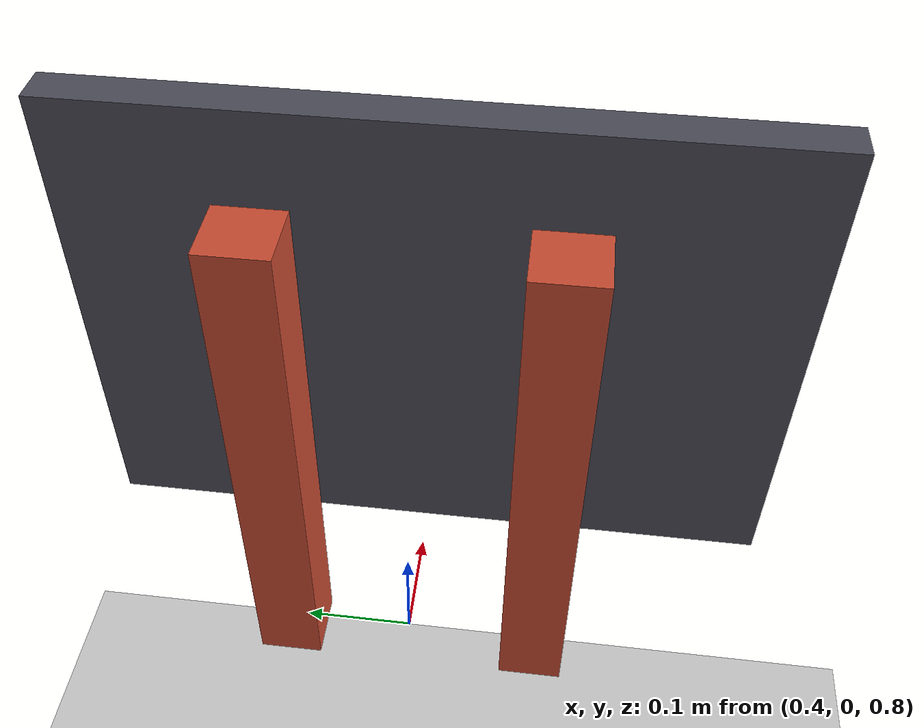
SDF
<?xml version="1.0" ?>
<sdf version="1.6">
  <world name="narrow_scene">
    <gravity>0 0 -9.8</gravity>

    <physics default="1" name="default_physics" type="dart">
      <real_time_update_rate>1000.0</real_time_update_rate>
      <bullet>
        <solver>
          <iters>50</iters>
          <min_step_size>0.0001</min_step_size>
          <sor>1.3</sor>
          <type>quick</type>
        </solver>
        <constraints>
          <contact_surface_layer>0.001</contact_surface_layer>
          <cfm>0.0</cfm>
          <erp>0.2</erp>
          <split_impulse>1</split_impulse>
          <split_impulse_penetration_threshold>-0.01</split_impulse_penetration_threshold>
        </constraints>
      </bullet>
      <max_contacts>20</max_contacts>
      <max_step_size>0.001</max_step_size>
      <real_time_factor>1.0</real_time_factor>
    </physics>

    <include>
      <uri>model://sun</uri>
    </include>
    <include>
      <uri>model://ground_plane</uri>
    </include>

    <!-- Left post (robot's left, +y). -->
    <model name="post_left">
      <static>true</static>
      <pose>0.42 0.12 1.00 0 0 0</pose>
      <link name="link">
        <collision name="c">
          <geometry><box><size>0.06 0.06 0.50</size></box></geometry>
        </collision>
        <visual name="v">
          <geometry><box><size>0.06 0.06 0.50</size></box></geometry>
          <material><ambient>0.8 0.3 0.2 1</ambient><diffuse>0.8 0.3 0.2 1</diffuse></material>
        </visual>
      </link>
    </model>

    <!-- Right post (robot's right, -y): the r_arm works on this side. -->
    <model name="post_right">
      <static>true</static>
      <pose>0.42 -0.12 1.00 0 0 0</pose>
      <link name="link">
        <collision name="c">
          <geometry><box><size>0.06 0.06 0.50</size></box></geometry>
        </collision>
        <visual name="v">
          <geometry><box><size>0.06 0.06 0.50</size></box></geometry>
          <material><ambient>0.8 0.3 0.2 1</ambient><diffuse>0.8 0.3 0.2 1</diffuse></material>
        </visual>
      </link>
    </model>

    <!-- A backing panel just behind the gap, so a goal placed between the posts
         is genuinely enclosed rather than open on three sides. -->
    <model name="backing">
      <static>true</static>
      <pose>0.60 0.0 1.00 0 0 0</pose>
      <link name="link">
        <collision name="c">
          <geometry><box><size>0.04 0.70 0.50</size></box></geometry>
        </collision>
        <visual name="v">
          <geometry><box><size>0.04 0.70 0.50</size></box></geometry>
          <material><ambient>0.3 0.3 0.35 1</ambient><diffuse>0.3 0.3 0.35 1</diffuse></material>
        </visual>
      </link>
    </model>
  </world>
</sdf>
